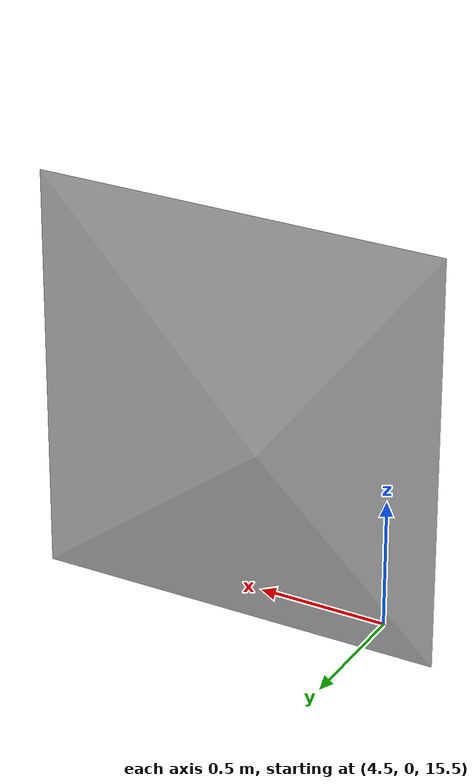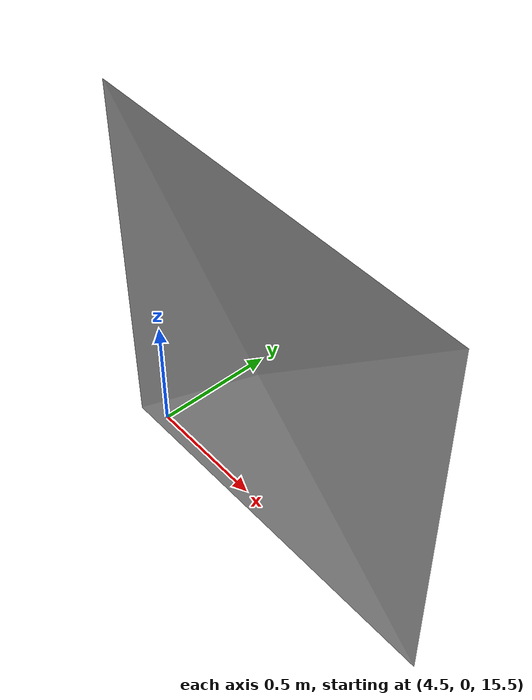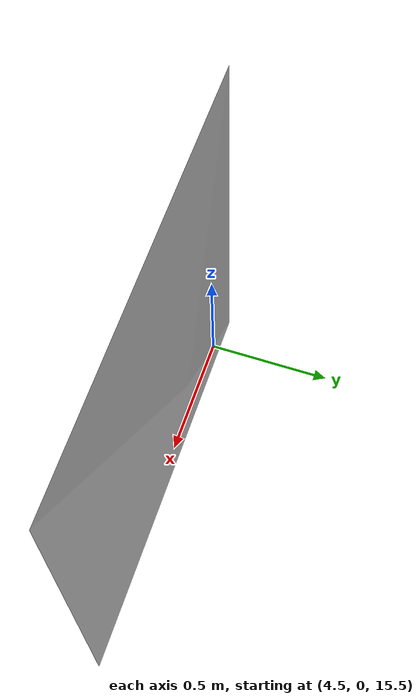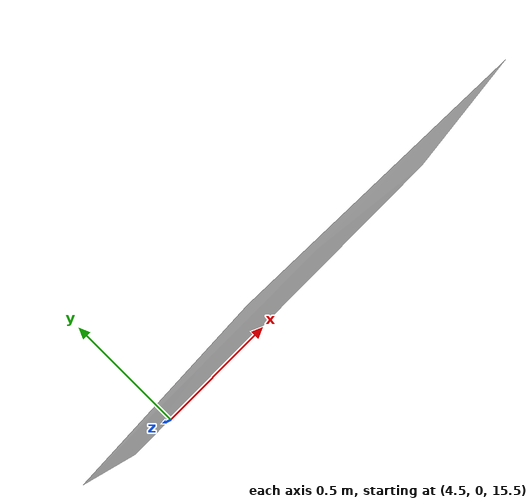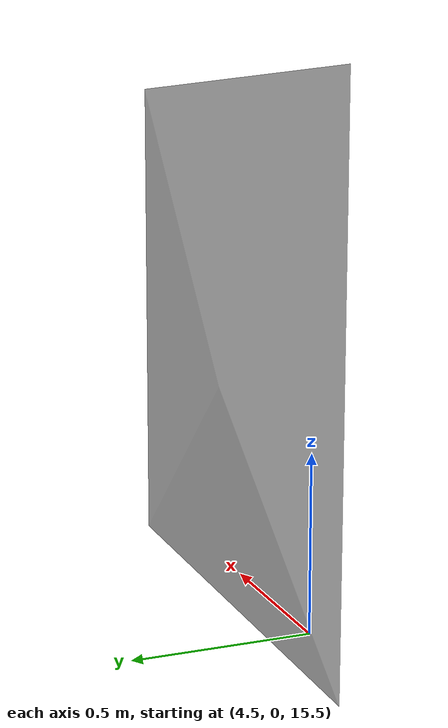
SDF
<?xml version="1.0" ?>
<sdf version="1.9">
  <model name="clover_05">
    <static>true</static>
    <link name="link">
      <collision name="collision">
        <pose>0 0 0.1 0 0 0</pose>
        <geometry>
          <box>
            <size>0.4 0.4 0.2</size>
          </box>
        </geometry>
      </collision>
      <visual name="visual">
        <geometry>
          <mesh>
            <uri>model://clover_05/meshes/Clover-05.obj</uri>
          </mesh>
        </geometry>
      </visual>
    </link>
  </model>
</sdf>
